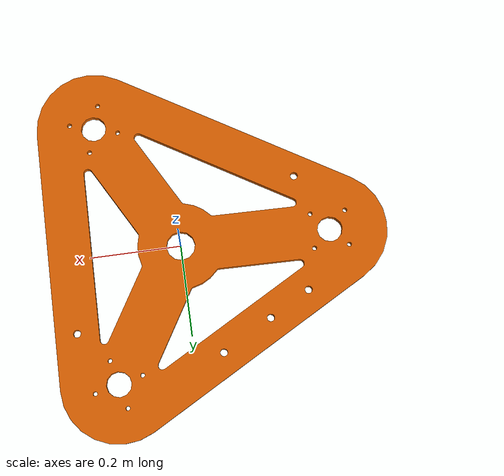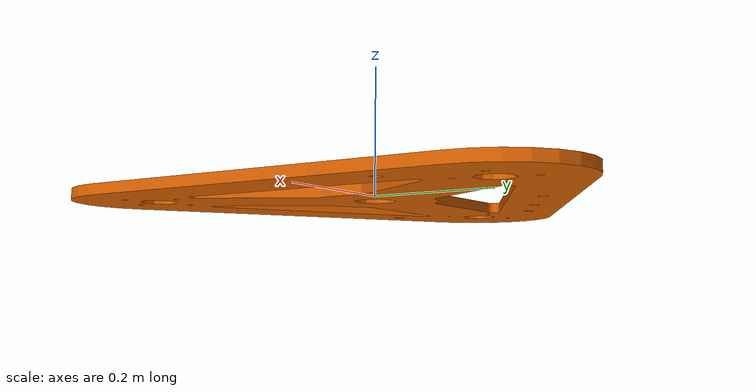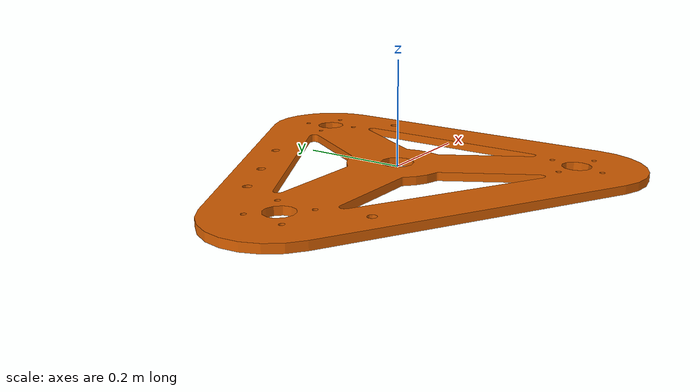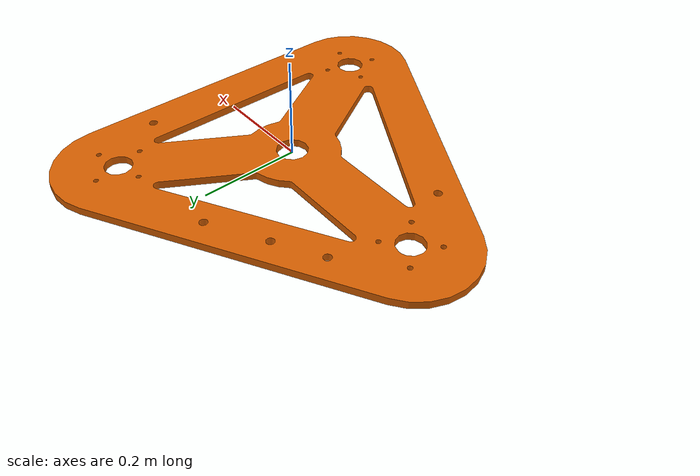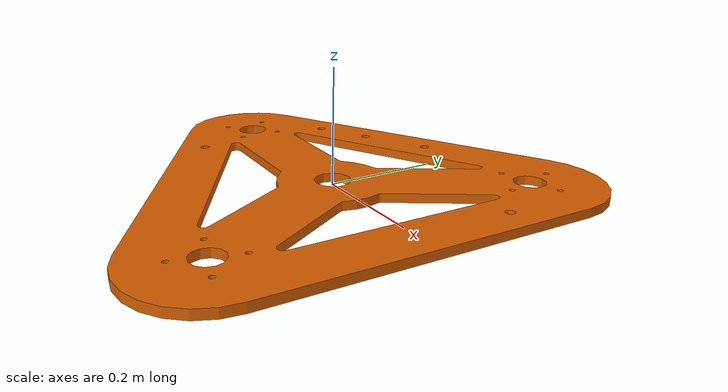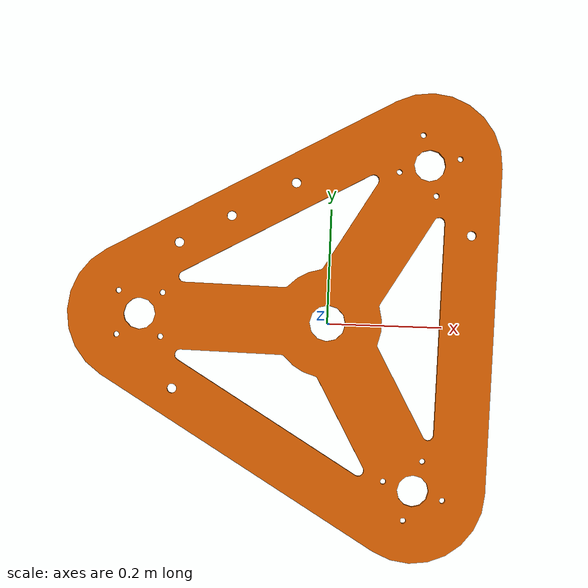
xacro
<?xml version="1.0"?>

<robot name="testbed" xmlns:xacro="http://www.ros.org/wiki/xacro">

  <!-- Parameters -->
  <xacro:property name="namespace" value="testbed"/>
  <xacro:property name="visual_mesh_file" value="file://$(find testbed_description)/meshes/triangle.stl"/>

  <!-- Mass -->
  <xacro:property name="mass" value="1.0"/>

  <!-- Vehicle ~ 0.6096 m (2ft) x 0.4445 (17.5in) x 0.4572 (18in) used for inertial properties-->
  <xacro:property name="length" value="0.625"/>
  <xacro:property name="width" value="0.4445"/>
  <xacro:property name="height" value="0.4572"/>

  <!-- Virtual world link to connect to testbed -->
  <link name="world" />
  <xacro:property name="parent" value="world"/>

  <!-- Macro to create the testbed -->
  <xacro:include filename="$(find testbed_description)/urdf/testbed_macro.xacro" />
  <xacro:testbed namespace="${namespace}" parent="${parent}" mass="${mass}" length="${length}" width="${width}" height="${height}" meshfile="${visual_mesh_file}"/>

  <!-- Macro to instantiate gazebo parameters for testbed -->
  <xacro:include filename="$(find testbed_description)/urdf/testbed.gazebo.xacro" />
  <xacro:testbed_gazebo namespace="${namespace}"/>

  <!-- Joint state publisher plugin -->
</robot>

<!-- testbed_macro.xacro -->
<robot xmlns:xacro="http://www.ros.org/wiki/xacro">

  <!-- Macro to create the testbed -->
  <xacro:macro name="testbed" params="namespace parent mass length width height meshfile">

    <!-- base_link according to ROS conventions: x forward, z up -->

    <!-- Need to add mass to these imaginary links for gazebo to see them -->
    <xacro:property name="mass_empty" value="0.1" />

    <joint name='${namespace}/fixed_joint' type="fixed">
      <parent link="${parent}"/>
      <child link="${namespace}/world_link_x"/>
    </joint>

    <link name="${namespace}/world_link_x">
        <inertial>
        <mass value="${mass_empty}" />
        <origin xyz="0 0 0" rpy="0 0 0"/>
        <inertia ixx="0" ixy="0" ixz="0"
                iyy="0" iyz="0"
                izz="0" />
        </inertial>
    </link>

    <link name="${namespace}/world_link_y">
        <inertial>
        <mass value="${mass_empty}" />
        <origin xyz="0 0 0" rpy="0 0 0"/>
        <inertia ixx="0" ixy="0" ixz="0"
                iyy="0" iyz="0"
                izz="0" />
        </inertial>
    </link>

    <link name="${namespace}/world_link_z">
        <inertial>
        <mass value="${mass_empty}" />
        <origin xyz="0 0 0" rpy="0 0 0"/>
        <inertia ixx="0" ixy="0" ixz="0"
                iyy="0" iyz="0"
                izz="0" />
        </inertial>
    </link>

    <link name="${namespace}/world_link_yaw">
        <inertial>
        <mass value="${mass_empty}" />
        <origin xyz="0 0 0" rpy="0 0 0"/>
        <inertia ixx="0" ixy="0" ixz="0"
                iyy="0" iyz="0"
                izz="0" />
        </inertial>
    </link>

    <link name="${namespace}/base_link">
      <inertial>
        <mass value="${mass}"/>
        <origin xyz="0 0 0"/>
        <inertia ixx="${(1/3)*((length**2)+(height**2))*mass}" ixy="0.0" ixz="0.0"
                 iyy="${(1/3)*((width**2)+(height**2))*mass}" iyz="0.0"
                 izz="${(1/3)*((length**2)+(width**2))*mass}"/>
      </inertial>
      <visual>
        <origin xyz="0 0 0" rpy="0 0 0"/>
        <geometry>
          <mesh filename="${visual_mesh_file}" scale="1 1 1"/>
        </geometry>
      </visual>

      <collision>
        <origin xyz="0 0 0" rpy="0 0 0"/>
        <geometry>
          <mesh filename="${visual_mesh_file}" scale="1 1 1"/>
        </geometry>
      </collision>

    </link>

    <joint name="corexy_x" type="prismatic">
      <parent link="${namespace}/world_link_x"/>
      <child link="${namespace}/world_link_y"/>
      <origin rpy="0 0 0" xyz="0 0 0"/>
      <axis xyz="1 0 0"/>
      <limit effort="255" velocity="1.6" lower="-1" upper="1" />
      <!-- Assume we are operating in 2x2x1m cube-->
    </joint>

    <joint name="corexy_y" type="prismatic">
      <parent link="${namespace}/world_link_y"/>
      <child link="${namespace}/world_link_z"/>
      <origin rpy="0 0 0" xyz="0 0 0"/>
      <axis xyz="0 1 0"/>
      <limit effort="255" velocity="1.6" lower="-1" upper="1" />
      <!-- Assume we are operating in 2x2x1m cube-->
    </joint>

    <joint name="z_axis" type="prismatic">
      <parent link="${namespace}/world_link_z"/>
      <child link="${namespace}/world_link_yaw"/>
      <origin rpy="0 0 0" xyz="0 0 0"/>
      <axis xyz="0 0 1"/>
      <limit effort="255" velocity="1.6" lower="-0.5" upper="0.5" />
      <!-- Assume we are operating in 2x2x1m cube-->
    </joint>

    <joint name="yaw" type="revolute">
      <parent link="${namespace}/world_link_yaw"/>
      <child link="${namespace}/base_link"/>
      <origin rpy="0 0 0" xyz="0 0 0"/>
      <axis xyz="0 0 1"/>
      <limit effort="255" velocity="${pi/2}" lower="-${pi}" upper="${pi}" />
      <!-- Assume we have no limit on yaw-->
    </joint>

  </xacro:macro>
</robot>
